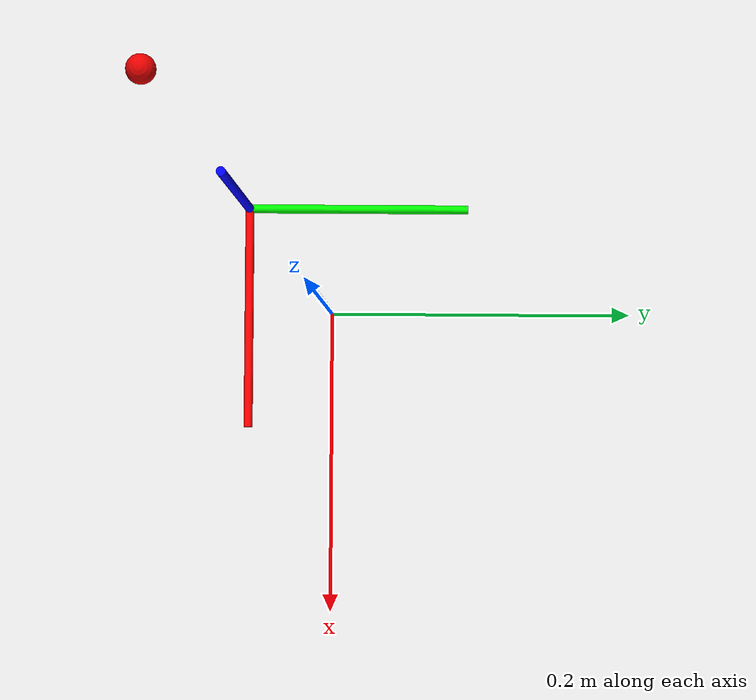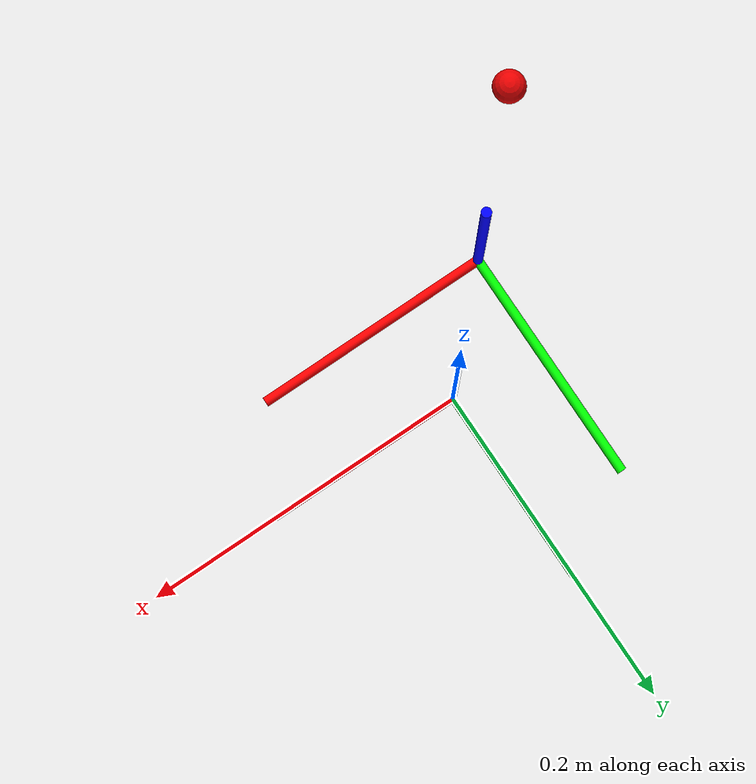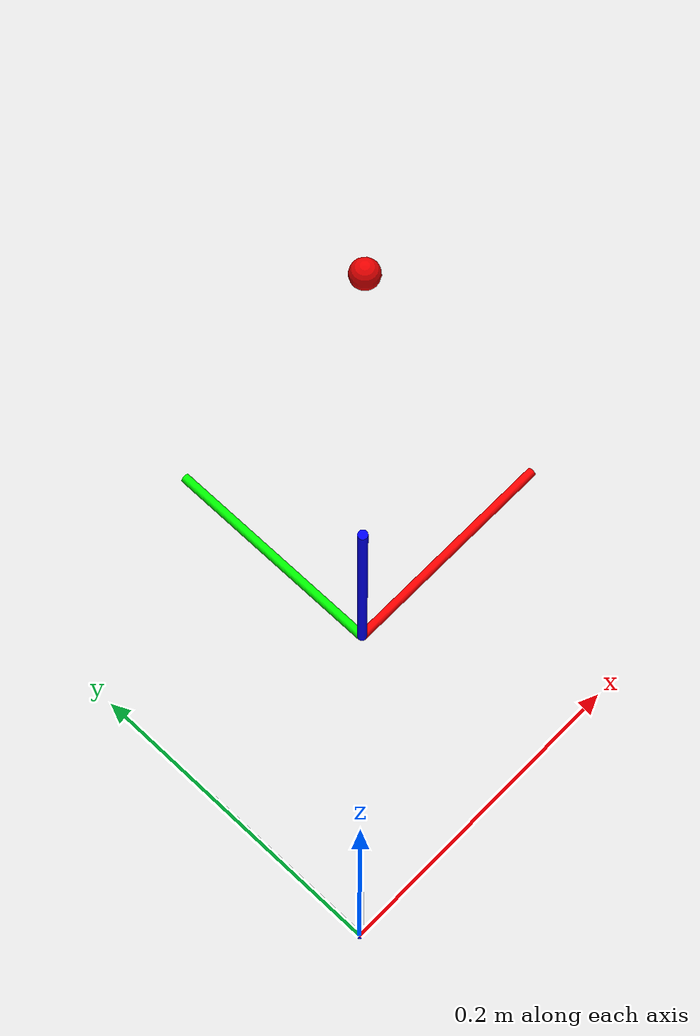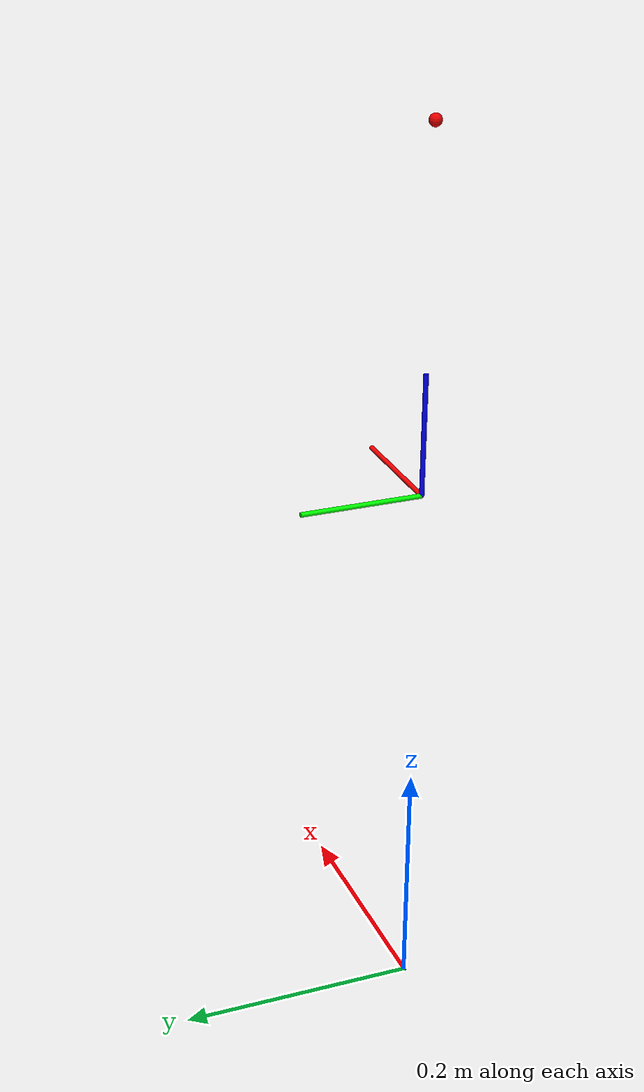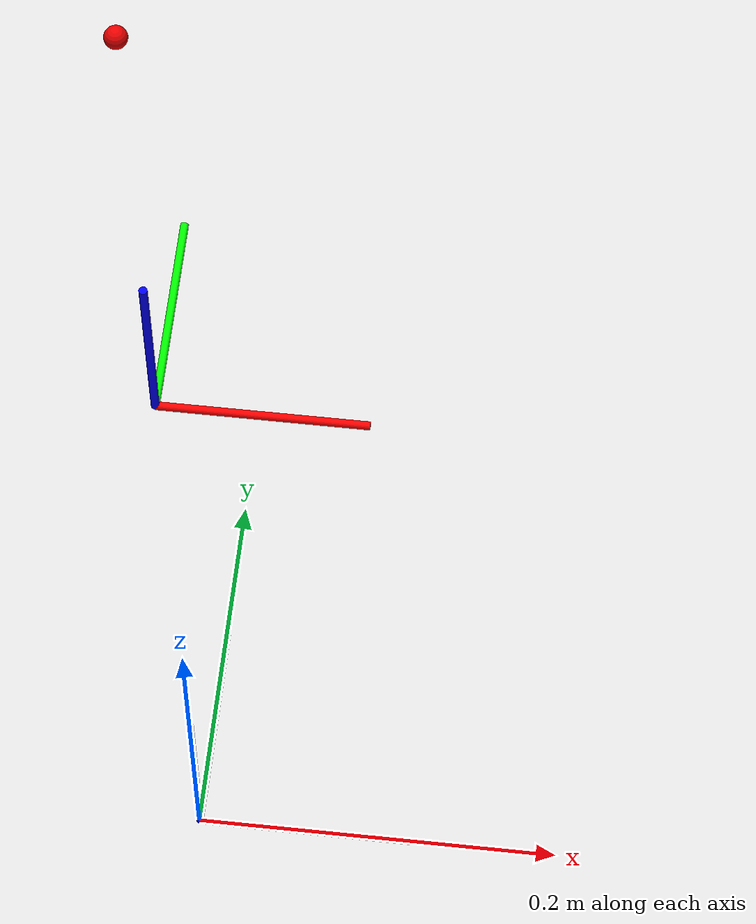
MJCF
<mujoco model="openarm">
  <compiler angle="radian" />

  <default>
    <default class="openarm">
      <default class="visual">
        <geom type="mesh" contype="0" conaffinity="0" group="2" />
      </default>
      <default class="collision">
        <geom group="3" />
        <default class="finger_collision">
          <geom type="box" solimp="0 1 0.001 0.02 3" solref="0.001 1" friction="2 0.05 0.05" />
        </default>
      </default>
    </default>
    <default class="dm8009">
      <geom contype="0" conaffinity="0"/>
      <joint damping="0.60" frictionloss="0.052" armature="0.028"/>
      <position kp="50" dampratio="1"/>
    </default>
    <default class="dm4340">
      <geom contype="0" conaffinity="0"/>
      <joint damping="0.60" frictionloss="0.052" armature="0.028"/>
      <position kp="50" dampratio="1"/>
    </default>
    <default class="dm4310">
      <geom contype="0" conaffinity="0"/>
      <joint damping="0.60" frictionloss="0.052" armature="0.028"/>
      <position kp="50" dampratio="1"/>
    </default>
    <default class="finger_actuator">
      <position ctrlrange="0 0.05" />
    </default>
    <default class="finger_slide">
      <joint type="slide" stiffness="100" damping="10.1" range="0 0.05" />
    </default>
  </default>

  <worldbody>
  <body name="base" childclass="openarm">
    <geom type="cylinder" size="0.002 0.06" rgba="1 0 0 1" pos="0.06 0.0 0.0" euler="0 1.57079 0" class="visual" />
    <geom type="cylinder" size="0.002 0.06" rgba="0 1 0 1" pos="0.0 0.06 0.0" euler="1.57079 0 0" class="visual" />
    <geom type="cylinder" size="0.002 0.06" rgba="0 0 1 1" pos="0.0 0.0 0.06" euler="0 0 0" class="visual" />

    <inertial pos="0.0030905 -0.00024462 0.029293" mass="1.3011" fullinertia="0.002694 0.002574 0.002166 0 0 0" />

    <body name="link1" pos="0 0 0.0625">
      <inertial pos="0.00114677 -3.31999e-05 0.0539528" quat="0.999653 0.00178277 0.0262159 -0.0018256" mass="1.14167" diaginertia="0.00156853 0.001273 0.00101447"/>
      <joint name="joint1" pos="0 0 0" axis="0 0 1" type="hinge" range="-3.49066 1.39626" class="dm8009"/>

      <body name="link2" pos="-0.0301 0 0.06">
        <inertial pos="0.00839629 2.01451e-08 0.0325665" quat="0.966167 0.00423301 0.257864 0.00305037" mass="0.277509" diaginertia="0.000421651 0.000376006 0.000169343"/>
        <joint name="joint2" pos="0 0 0" axis="-1 0 0" type="hinge" range="-1.74533 1.74533" class="dm8009"/>

        <body name="link3" pos="0.0301 0 0.06625">
          <inertial pos="-0.00210475 -0.000554909 0.0904747" quat="0.999951 -0.00493243 -0.00144148 0.00846755" mass="1.07386" diaginertia="0.00437205 0.00431934 0.000660613"/>
          <joint name="joint3" pos="0 0 0" axis="0 0 1" type="hinge" range="-1.5708 1.5708" class="dm4340"/>

          <body name="link4" pos="0 0.0315 0.15375">
            <inertial pos="-0.00290068 -0.0303058 0.0633964" quat="0.994282 0.0996876 0.0329726 -0.0194356" mass="0.634853" diaginertia="0.000624355 0.000518596 0.000325049"/>
            <joint name="joint4" pos="0 0 0" axis="0 1 0" type="hinge" range="0 2.44346" class="dm4340" />

            <body name="link5" pos="0 -0.0315 0.0955">
              <inertial pos="-0.00304967 -0.00088669 0.0430798" quat="0.583368 -0.0362076 0.0020034 0.811398" mass="0.615659" diaginertia="0.000448064 0.000420549 0.000323387"/>
              <joint name="joint5" pos="0 0 0" axis="0 0 1" type="hinge" range="-1.5708 1.5708" class="dm4310" />

              <body name="link6" pos="0.0375 0 0.1205">
                <inertial pos="-0.0371366 -0.000332305 -9.49837e-05" quat="0.162305 0.716462 0.124543 0.666955" mass="0.475203" diaginertia="0.000159518 0.000156606 0.000142875"/>
                <joint name="joint6" pos="0 0 0" axis="1 0 0" type="hinge" range="-0.785398 0.785398" class="dm4310" />

                <body name="link7" pos="-0.0375 0 0">
                  <site name="EE" size="0.005" pos="0.0 0.0 0.19" rgba="0.9 0 0 1" />
                  <geom type="cylinder" size="0.002 0.05" rgba="1 0 0 1" pos="0.05 -0.0 -0.1" euler="0 1.57079 0" class="visual" />
                  <geom type="cylinder" size="0.002 0.05" rgba="0 1 0 1" pos="0 0.05 -0.1" euler="1.57079 0 0" class="visual" />
                  <geom type="cylinder" size="0.002 0.05" rgba="0 0 1 1" pos="0 -0.0 -0.05" euler="0 0 0" class="visual" />
                  <inertial pos="0.000225407 -0.0493083 0.0527505" quat="0.562309 0.826922 -0.00037379 0.00302762" mass="0.815977" diaginertia="0.00265078 0.00228138 0.000591786"/>
                  <joint name="joint7" pos="0 0 0" axis="0 -1 0" type="hinge" range="-1.5708 1.5708" class="dm4310" />

                  <body name="left_finger" pos="0 0.006 0.1151">
                    <inertial pos="0.0064528 0.01702 0.0219685" quat="0.923117 0.0155444 -0.0375274 0.382368" mass="0.0360255" diaginertia="2.48652e-06 2.275e-06 7.38483e-07"/>
                    <joint name="left_finger_joint" pos="0 0 0" axis="0 1 0" type="slide" range="0 0.044" actuatorfrcrange="-100 100" class="finger_slide" />

                  </body>
                  <body name="right_finger" pos="0 -0.006 0.1151">
                    <inertial pos="0.0064528 -0.01702 0.0219685" quat="0.923117 0.0155444 -0.0375274 0.382368" mass="0.0360255" diaginertia="2.48652e-06 2.275e-06 7.38483e-07"/>
                    <joint name="right_finger_joint" pos="0 0 0" axis="0 -1 0" type="slide" range="0 0.044" actuatorfrcrange="-100 100" class="finger_slide" />

                  </body>
                </body>
              </body>
            </body>
          </body>
        </body>
      </body>
    </body>
  </body>
  </worldbody>

  <tendon>
    <fixed name="split">
      <joint joint="right_finger_joint" coef="0.5" />
      <joint joint="left_finger_joint" coef="0.5" />
    </fixed>
  </tendon>

  <actuator>
    <position name="joint1" joint="joint1" class="dm8009" kp="500" kv="30" forcerange="-40 40" ctrlrange="-3.49066 1.39626" />
    <position name="joint2" joint="joint2" class="dm8009" kp="500" kv="30" forcerange="-40 40" ctrlrange="-1.74533 1.74533" />
    <position name="joint3" joint="joint3" class="dm4340" kp="260" kv="20" forcerange="-27 27" ctrlrange="-1.5708 1.5708" />
    <position name="joint4" joint="joint4" class="dm4340" kp="260" kv="20" forcerange="-27 27" ctrlrange="0 2.44346" />
    <position name="joint5" joint="joint5" class="dm4310" kp="50" kv="1.5" forcerange="-7 7" ctrlrange="-1.5708 1.5708" />
    <position name="joint6" joint="joint6" class="dm4310" kp="50" kv="1.5" forcerange="-7 7" ctrlrange="-0.785398 0.785398" />
    <position name="joint7" joint="joint7" class="dm4310" kp="50" kv="1.5" forcerange="-7 7" ctrlrange="-1.5708 1.5708" />
    <position name="gripper" tendon="split" class="finger_actuator" kp="2000" kv="50" ctrlrange="0 0.05" />
  </actuator>

  <keyframe>
    <key name="home" qpos="0 0 0 0 0 0 0 0 0" ctrl="0 0 0 0 0 0 0 0 0" />
    <key name="standby1" qpos="-3.4 1.57 1.57 0 1.57 0.78 1.57 0.05 0.05" ctrl="-3.4 1.57 1.57 0 1.57 0.78 1.57 0.05 0.05" />
    <key name="standby2" qpos="0 1.57 -1.57 2.4 0 0 0 0 0" ctrl="0 1.57 -1.57 2.4 0 0 0 0 0" />
    <key name="standby3" qpos="1.3 -1.57 -1.57 0 -1.57 -0.78 -1.57 0 0" ctrl="1.3 -1.57 -1.57 0 -1.57 -0.78 -1.57 0 0" />
  </keyframe>

</mujoco>
